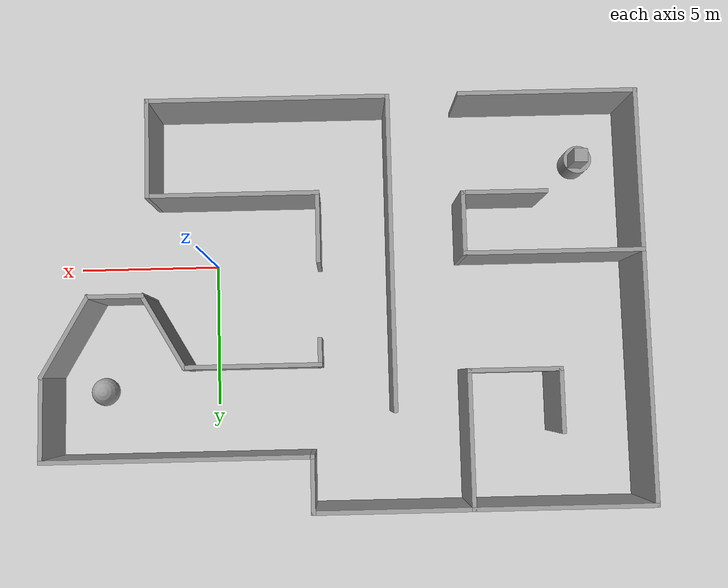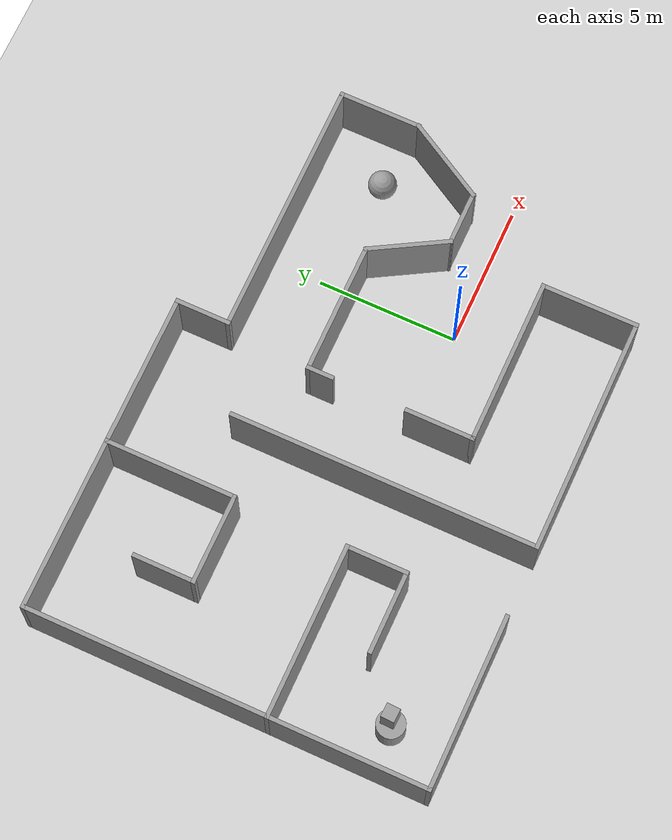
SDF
<sdf version="1.7">
 <world name="default">
  <light name="sun" type="directional">
   <pose>0 0 10 0 -0 0</pose>
   <diffuse>0.8 0.8 0.8 1</diffuse>
   <specular>0.2 0.2 0.2 1</specular>
   <attenuation>
    <range>1000</range>
    <constant>0.9</constant>
    <linear>0.01</linear>
    <quadratic>0.001</quadratic>
   </attenuation>
   <direction>-0.5 0.1 -0.9</direction>
   <spot><inner_angle>0</inner_angle><outer_angle>0</outer_angle><falloff>0</falloff></spot>
  </light>
  <model name="ground_plane">
   <static>1</static>
   <link name="link">
    <collision name="collision">
     <geometry><plane><normal>0 0 1</normal><size>100 100</size></plane></geometry>
     <surface>
      <contact><collide_bitmask>65535</collide_bitmask></contact>
      <friction><ode><mu>100</mu><mu2>50</mu2></ode></friction>
     </surface>
    </collision>
    <visual name="visual">
     <cast_shadows>0</cast_shadows>
     <geometry><plane><normal>0 0 1</normal><size>100 100</size></plane></geometry>
     <material>
      <script><uri>file://media/materials/scripts/gazebo.material</uri><name>Gazebo/Grey</name></script>
     </material>
    </visual>
   </link>
  </model>
  <gravity>0 0 -9.8</gravity>
  <magnetic_field>6e-06 2.3e-05 -4.2e-05</magnetic_field>
  <atmosphere type="adiabatic"/>
  <physics type="ode">
   <max_step_size>0.001</max_step_size>
   <real_time_factor>1</real_time_factor>
   <real_time_update_rate>1000</real_time_update_rate>
  </physics>
  <scene><ambient>0.4 0.4 0.4 1</ambient><background>0.7 0.7 0.7 1</background><shadows>1</shadows></scene>
  <spherical_coordinates>
   <surface_model>EARTH_WGS84</surface_model>
   <latitude_deg>0</latitude_deg>
   <longitude_deg>0</longitude_deg>
   <elevation>0</elevation>
   <heading_deg>0</heading_deg>
  </spherical_coordinates>
  <model name="Basic_House_2">
   <pose>-4.57558 1.52831 0 0 -0 0</pose>
   <link name="Wall_19">
    <collision name="Wall_19_Collision">
     <geometry><box><size>11 0.15 2.5</size></box></geometry>
     <pose>0 0 1.25 0 -0 0</pose>
    </collision>
    <visual name="Wall_19_Visual">
     <pose>0 0 1.25 0 -0 0</pose>
     <geometry><box><size>11 0.15 2.5</size></box></geometry>
     <material>
      <script><uri>file://media/materials/scripts/gazebo.material</uri><name>Gazebo/Grey</name></script>
      <ambient>1 1 1 1</ambient>
     </material>
     <meta><layer>0</layer></meta>
    </visual>
    <pose>-1.67212 -1.64429 0 0 -0 -1.5708</pose>
   </link>
   <link name="Wall_20">
    <collision name="Wall_20_Collision">
     <geometry><box><size>8.5 0.15 2.5</size></box></geometry>
     <pose>0 0 1.25 0 -0 0</pose>
    </collision>
    <visual name="Wall_20_Visual">
     <pose>0 0 1.25 0 -0 0</pose>
     <geometry><box><size>8.5 0.15 2.5</size></box></geometry>
     <material>
      <script><uri>file://media/materials/scripts/gazebo.material</uri><name>Gazebo/Grey</name></script>
      <ambient>1 1 1 1</ambient>
     </material>
     <meta><layer>0</layer></meta>
    </visual>
    <pose>2.50288 -7.06929 0 0 -0 0</pose>
   </link>
   <link name="Wall_24">
    <collision name="Wall_24_Collision">
     <geometry><box><size>3.5 0.15 2.5</size></box></geometry>
     <pose>0 0 1.25 0 -0 0</pose>
    </collision>
    <visual name="Wall_24_Visual">
     <pose>0 0 1.25 0 -0 0</pose>
     <geometry><box><size>3.5 0.15 2.5</size></box></geometry>
     <material>
      <script><uri>file://media/materials/scripts/gazebo.material</uri><name>Gazebo/Grey</name></script>
      <ambient>1 1 1 1</ambient>
     </material>
     <meta><layer>0</layer></meta>
    </visual>
    <pose>6.67788 -5.39429 0 0 -0 1.5708</pose>
   </link>
   <link name="Wall_25">
    <collision name="Wall_25_Collision">
     <geometry><box><size>6 0.15 2.5</size></box></geometry>
     <pose>0 0 1.25 0 -0 0</pose>
    </collision>
    <visual name="Wall_25_Visual">
     <pose>0 0 1.25 0 -0 0</pose>
     <geometry><box><size>6 0.15 2.5</size></box></geometry>
     <material>
      <script><uri>file://media/materials/scripts/gazebo.material</uri><name>Gazebo/Grey</name></script>
      <ambient>1 1 1 1</ambient>
     </material>
     <meta><layer>0</layer></meta>
    </visual>
    <pose>3.75288 -3.71929 0 0 -0 3.14159</pose>
   </link>
   <link name="Wall_26">
    <collision name="Wall_26_Collision">
     <geometry><box><size>2.5 0.15 2.5</size></box></geometry>
     <pose>0 0 1.25 0 -0 0</pose>
    </collision>
    <visual name="Wall_26_Visual">
     <pose>0 0 1.25 0 -0 0</pose>
     <geometry><box><size>2.5 0.15 2.5</size></box></geometry>
     <material>
      <script><uri>file://media/materials/scripts/gazebo.material</uri><name>Gazebo/Grey</name></script>
      <ambient>1 1 1 1</ambient>
     </material>
     <meta><layer>0</layer></meta>
    </visual>
    <pose>0.827876 -2.54429 0 0 -0 1.5708</pose>
   </link>
   <link name="Wall_29">
    <collision name="Wall_29_Collision">
     <geometry><box><size>1 0.15 2.5</size></box></geometry>
     <pose>0 0 1.25 0 -0 0</pose>
    </collision>
    <visual name="Wall_29_Visual">
     <pose>0 0 1.25 0 -0 0</pose>
     <geometry><box><size>1 0.15 2.5</size></box></geometry>
     <material>
      <script><uri>file://media/materials/scripts/gazebo.material</uri><name>Gazebo/Grey</name></script>
      <ambient>1 1 1 1</ambient>
     </material>
     <meta><layer>0</layer></meta>
    </visual>
    <pose>0.836274 1.75849 0 0 -0 1.5708</pose>
   </link>
   <link name="Wall_30">
    <collision name="Wall_30_Collision">
     <geometry><box><size>4.75 0.15 2.5</size></box></geometry>
     <pose>0 0 1.25 0 -0 0</pose>
    </collision>
    <visual name="Wall_30_Visual">
     <pose>0 0 1.25 0 -0 0</pose>
     <geometry><box><size>4.75 0.15 2.5</size></box></geometry>
     <material>
      <script><uri>file://media/materials/scripts/gazebo.material</uri><name>Gazebo/Grey</name></script>
      <ambient>1 1 1 1</ambient>
     </material>
     <meta><layer>0</layer></meta>
    </visual>
    <pose>3.13627 2.18349 0 0 -0 0</pose>
   </link>
   <link name="Wall_31">
    <collision name="Wall_31_Collision">
     <geometry><box><size>3 0.15 2.5</size></box></geometry>
     <pose>0 0 1.25 0 -0 0</pose>
    </collision>
    <visual name="Wall_31_Visual">
     <pose>0 0 1.25 0 -0 0</pose>
     <geometry><box><size>3 0.15 2.5</size></box></geometry>
     <material>
      <script><uri>file://media/materials/scripts/gazebo.material</uri><name>Gazebo/Grey</name></script>
      <ambient>1 1 1 1</ambient>
     </material>
     <meta><layer>0</layer></meta>
    </visual>
    <pose>6.14877 0.949408 0 0 -0 -1.0472</pose>
   </link>
   <link name="Wall_32">
    <collision name="Wall_32_Collision">
     <geometry><box><size>2 0.15 2.5</size></box></geometry>
     <pose>0 0 1.25 0 -0 0</pose>
    </collision>
    <visual name="Wall_32_Visual">
     <pose>0 0 1.25 0 -0 0</pose>
     <geometry><box><size>2 0.15 2.5</size></box></geometry>
     <material>
      <script><uri>file://media/materials/scripts/gazebo.material</uri><name>Gazebo/Grey</name></script>
      <ambient>1 1 1 1</ambient>
     </material>
     <meta><layer>0</layer></meta>
    </visual>
    <pose>7.78627 -0.284679 0 0 -0 0</pose>
   </link>
   <link name="Wall_33">
    <collision name="Wall_33_Collision">
     <geometry><box><size>3.25 0.15 2.5</size></box></geometry>
     <pose>0 0 1.25 0 -0 0</pose>
    </collision>
    <visual name="Wall_33_Visual">
     <pose>0 0 1.25 0 -0 0</pose>
     <geometry><box><size>3.25 0.15 2.5</size></box></geometry>
     <material>
      <script><uri>file://media/materials/scripts/gazebo.material</uri><name>Gazebo/Grey</name></script>
      <ambient>1 1 1 1</ambient>
     </material>
     <meta><layer>0</layer></meta>
    </visual>
    <pose>9.48627 1.05766 0 0 -0 1.0472</pose>
   </link>
   <link name="Wall_34">
    <collision name="Wall_34_Collision">
     <geometry><box><size>3 0.15 2.5</size></box></geometry>
     <pose>0 0 1.25 0 -0 0</pose>
    </collision>
    <visual name="Wall_34_Visual">
     <pose>0 0 1.25 0 -0 0</pose>
     <geometry><box><size>3 0.15 2.5</size></box></geometry>
     <material>
      <script><uri>file://media/materials/scripts/gazebo.material</uri><name>Gazebo/Grey</name></script>
      <ambient>1 1 1 1</ambient>
     </material>
     <meta><layer>0</layer></meta>
    </visual>
    <pose>10.2613 3.825 0 0 -0 1.5708</pose>
   </link>
   <link name="Wall_35">
    <collision name="Wall_35_Collision">
     <geometry><box><size>9.25 0.15 2.5</size></box></geometry>
     <pose>0 0 1.25 0 -0 0</pose>
    </collision>
    <visual name="Wall_35_Visual">
     <pose>0 0 1.25 0 -0 0</pose>
     <geometry><box><size>9.25 0.15 2.5</size></box></geometry>
     <material>
      <script><uri>file://media/materials/scripts/gazebo.material</uri><name>Gazebo/Grey</name></script>
      <ambient>1 1 1 1</ambient>
     </material>
     <meta><layer>0</layer></meta>
    </visual>
    <pose>5.71127 5.25 0 0 -0 3.14159</pose>
   </link>
   <link name="Wall_36">
    <collision name="Wall_36_Collision">
     <geometry><box><size>2 0.15 2.5</size></box></geometry>
     <pose>0 0 1.25 0 -0 0</pose>
    </collision>
    <visual name="Wall_36_Visual">
     <pose>0 0 1.25 0 -0 0</pose>
     <geometry><box><size>2 0.15 2.5</size></box></geometry>
     <material>
      <script><uri>file://media/materials/scripts/gazebo.material</uri><name>Gazebo/Grey</name></script>
      <ambient>1 1 1 1</ambient>
     </material>
     <meta><layer>0</layer></meta>
    </visual>
    <pose>1.16127 6.175 0 0 -0 1.5708</pose>
   </link>
   <link name="Wall_37">
    <collision name="Wall_37_Collision">
     <geometry><box><size>5.5 0.15 2.5</size></box></geometry>
     <pose>0 0 1.25 0 -0 0</pose>
    </collision>
    <visual name="Wall_37_Visual">
     <pose>0 0 1.25 0 -0 0</pose>
     <geometry><box><size>5.5 0.15 2.5</size></box></geometry>
     <material>
      <script><uri>file://media/materials/scripts/gazebo.material</uri><name>Gazebo/Grey</name></script>
      <ambient>1 1 1 1</ambient>
     </material>
     <meta><layer>0</layer></meta>
    </visual>
    <pose>-1.51372 7.1 0 0 -0 3.14159</pose>
   </link>
   <link name="Wall_38">
    <collision name="Wall_38_Collision">
     <geometry><box><size>4.75 0.15 2.5</size></box></geometry>
     <pose>0 0 1.25 0 -0 0</pose>
    </collision>
    <visual name="Wall_38_Visual">
     <pose>0 0 1.25 0 -0 0</pose>
     <geometry><box><size>4.75 0.15 2.5</size></box></geometry>
     <material>
      <script><uri>file://media/materials/scripts/gazebo.material</uri><name>Gazebo/Grey</name></script>
      <ambient>1 1 1 1</ambient>
     </material>
     <meta><layer>0</layer></meta>
    </visual>
    <pose>-4.18872 4.8 0 0 -0 -1.5708</pose>
   </link>
   <link name="Wall_39">
    <collision name="Wall_39_Collision">
     <geometry><box><size>3.25 0.15 2.5</size></box></geometry>
     <pose>0 0 1.25 0 -0 0</pose>
    </collision>
    <visual name="Wall_39_Visual">
     <pose>0 0 1.25 0 -0 0</pose>
     <geometry><box><size>3.25 0.15 2.5</size></box></geometry>
     <material>
      <script><uri>file://media/materials/scripts/gazebo.material</uri><name>Gazebo/Grey</name></script>
      <ambient>1 1 1 1</ambient>
     </material>
     <meta><layer>0</layer></meta>
    </visual>
    <pose>-5.73873 2.5 0 0 -0 3.14159</pose>
   </link>
   <link name="Wall_40">
    <collision name="Wall_40_Collision">
     <geometry><box><size>2.25 0.15 2.5</size></box></geometry>
     <pose>0 0 1.25 0 -0 0</pose>
    </collision>
    <visual name="Wall_40_Visual">
     <pose>0 0 1.25 0 -0 0</pose>
     <geometry><box><size>2.25 0.15 2.5</size></box></geometry>
     <material>
      <script><uri>file://media/materials/scripts/gazebo.material</uri><name>Gazebo/Grey</name></script>
      <ambient>1 1 1 1</ambient>
     </material>
     <meta><layer>0</layer></meta>
    </visual>
    <pose>-7.28873 3.55 0 0 -0 1.5708</pose>
   </link>
   <link name="Wall_44">
    <collision name="Wall_44_Collision">
     <geometry><box><size>6.25 0.15 2.5</size></box></geometry>
     <pose>0 0 1.25 0 -0 0</pose>
    </collision>
    <visual name="Wall_44_Visual">
     <pose>0 0 1.25 0 -0 0</pose>
     <geometry><box><size>6.25 0.15 2.5</size></box></geometry>
     <material>
      <script><uri>file://media/materials/scripts/gazebo.material</uri><name>Gazebo/Grey</name></script>
      <ambient>1 1 1 1</ambient>
     </material>
     <meta><layer>0</layer></meta>
    </visual>
    <pose>-7.23873 7.1 0 0 -0 3.14159</pose>
   </link>
   <link name="Wall_45">
    <collision name="Wall_45_Collision">
     <geometry><box><size>8.75 0.15 2.5</size></box></geometry>
     <pose>0 0 1.25 0 -0 0</pose>
    </collision>
    <visual name="Wall_45_Visual">
     <pose>0 0 1.25 0 -0 0</pose>
     <geometry><box><size>8.75 0.15 2.5</size></box></geometry>
     <material>
      <script><uri>file://media/materials/scripts/gazebo.material</uri><name>Gazebo/Grey</name></script>
      <ambient>1 1 1 1</ambient>
     </material>
     <meta><layer>0</layer></meta>
    </visual>
    <pose>-10.2887 2.8 0 0 -0 -1.5708</pose>
   </link>
   <link name="Wall_46">
    <collision name="Wall_46_Collision">
     <geometry><box><size>6.25 0.15 2.5</size></box></geometry>
     <pose>0 0 1.25 0 -0 0</pose>
    </collision>
    <visual name="Wall_46_Visual">
     <pose>0 0 1.25 0 -0 0</pose>
     <geometry><box><size>6.25 0.15 2.5</size></box></geometry>
     <material>
      <script><uri>file://media/materials/scripts/gazebo.material</uri><name>Gazebo/Grey</name></script>
      <ambient>1 1 1 1</ambient>
     </material>
     <meta><layer>0</layer></meta>
    </visual>
    <pose>-7.23873 -1.5 0 0 -0 0</pose>
   </link>
   <link name="Wall_47">
    <collision name="Wall_47_Collision">
     <geometry><box><size>2.25 0.15 2.5</size></box></geometry>
     <pose>0 0 1.25 0 -0 0</pose>
    </collision>
    <visual name="Wall_47_Visual">
     <pose>0 0 1.25 0 -0 0</pose>
     <geometry><box><size>2.25 0.15 2.5</size></box></geometry>
     <material>
      <script><uri>file://media/materials/scripts/gazebo.material</uri><name>Gazebo/Grey</name></script>
      <ambient>1 1 1 1</ambient>
     </material>
     <meta><layer>0</layer></meta>
    </visual>
    <pose>-4.18872 -2.55 0 0 -0 -1.5708</pose>
   </link>
   <link name="Wall_48">
    <collision name="Wall_48_Collision">
     <geometry><box><size>3 0.15 2.5</size></box></geometry>
     <pose>0 0 1.25 0 -0 0</pose>
    </collision>
    <visual name="Wall_48_Visual">
     <pose>0 0 1.25 0 -0 0</pose>
     <geometry><box><size>3 0.15 2.5</size></box></geometry>
     <material>
      <script><uri>file://media/materials/scripts/gazebo.material</uri><name>Gazebo/Grey</name></script>
      <ambient>1 1 1 1</ambient>
     </material>
     <meta><layer>0</layer></meta>
    </visual>
    <pose>-5.61373 -3.6 0 0 -0 3.14159</pose>
   </link>
   <link name="Wall_50">
    <collision name="Wall_50_Collision">
     <geometry><box><size>5.75 0.15 2.5</size></box></geometry>
     <pose>0 0 1.25 0 -0 0</pose>
    </collision>
    <visual name="Wall_50_Visual">
     <pose>0 0 1.25 0 -0 0</pose>
     <geometry><box><size>5.75 0.15 2.5</size></box></geometry>
     <material>
      <script><uri>file://media/materials/scripts/gazebo.material</uri><name>Gazebo/Grey</name></script>
      <ambient>1 1 1 1</ambient>
     </material>
     <meta><layer>0</layer></meta>
    </visual>
    <pose>-10.2887 -4.3 0 0 -0 -1.5708</pose>
   </link>
   <link name="Wall_51">
    <collision name="Wall_51_Collision">
     <geometry><box><size>6.25 0.15 2.5</size></box></geometry>
     <pose>0 0 1.25 0 -0 0</pose>
    </collision>
    <visual name="Wall_51_Visual">
     <pose>0 0 1.25 0 -0 0</pose>
     <geometry><box><size>6.25 0.15 2.5</size></box></geometry>
     <material>
      <script><uri>file://media/materials/scripts/gazebo.material</uri><name>Gazebo/Grey</name></script>
      <ambient>1 1 1 1</ambient>
     </material>
     <meta><layer>0</layer></meta>
    </visual>
    <pose>-7.23873 -7.1 0 0 -0 0</pose>
   </link>
   <static>1</static>
  </model>
  <model name="unit_sphere">
   <pose>4.00387 4.47616 0.5 0 -0 0</pose>
   <link name="link">
    <inertial>
     <mass>1</mass>
     <inertia><ixx>0.1</ixx><ixy>0</ixy><ixz>0</ixz><iyy>0.1</iyy><iyz>0</iyz><izz>0.1</izz></inertia>
    </inertial>
    <collision name="collision"><geometry><sphere><radius>0.5</radius></sphere></geometry></collision>
    <visual name="visual">
     <geometry><sphere><radius>0.5</radius></sphere></geometry>
     <material>
      <script><name>Gazebo/Grey</name><uri>file://media/materials/scripts/gazebo.material</uri></script>
     </material>
    </visual>
   </link>
  </model>
  <model name="unit_cylinder">
   <pose>-13.1776 -3.52775 0.479311 -0.009652 0.013587 -0.00962</pose>
   <link name="link">
    <inertial>
     <mass>1</mass>
     <inertia><ixx>0.145833</ixx><ixy>0</ixy><ixz>0</ixz><iyy>0.145833</iyy><iyz>0</iyz><izz>0.125</izz></inertia>
    </inertial>
    <collision name="collision">
     <geometry><cylinder><radius>0.5</radius><length>1</length></cylinder></geometry>
    </collision>
    <visual name="visual">
     <geometry><cylinder><radius>0.5</radius><length>1</length></cylinder></geometry>
     <material>
      <script><name>Gazebo/Grey</name><uri>file://media/materials/scripts/gazebo.material</uri></script>
     </material>
    </visual>
   </link>
  </model>
  <model name="unit_box">
   <pose>-13.0464 -3.43647 1.47675 -0.010086 0.013295 -0.04094</pose>
   <link name="link">
    <inertial>
     <mass>1</mass>
     <inertia>
      <ixx>0.166667</ixx>
      <ixy>0</ixy>
      <ixz>0</ixz>
      <iyy>0.166667</iyy>
      <iyz>0</iyz>
      <izz>0.166667</izz>
     </inertia>
    </inertial>
    <collision name="collision"><geometry><box><size>0.49276 0.480779 1</size></box></geometry></collision>
    <visual name="visual">
     <geometry><box><size>0.49276 0.480779 1</size></box></geometry>
     <material>
      <script><name>Gazebo/Grey</name><uri>file://media/materials/scripts/gazebo.material</uri></script>
     </material>
    </visual>
   </link>
  </model>
 </world>
</sdf>
